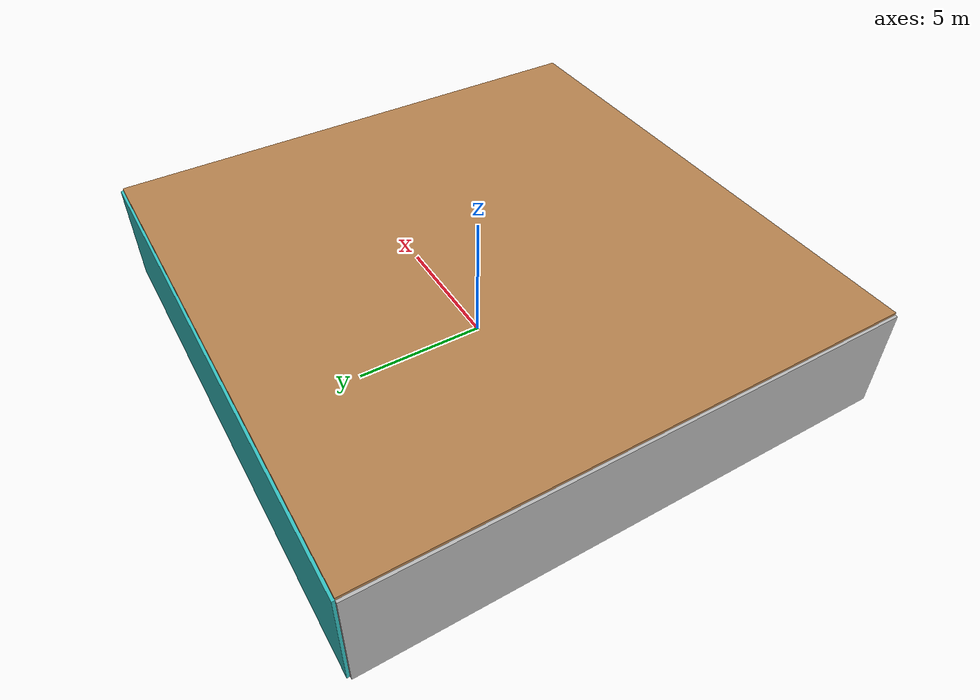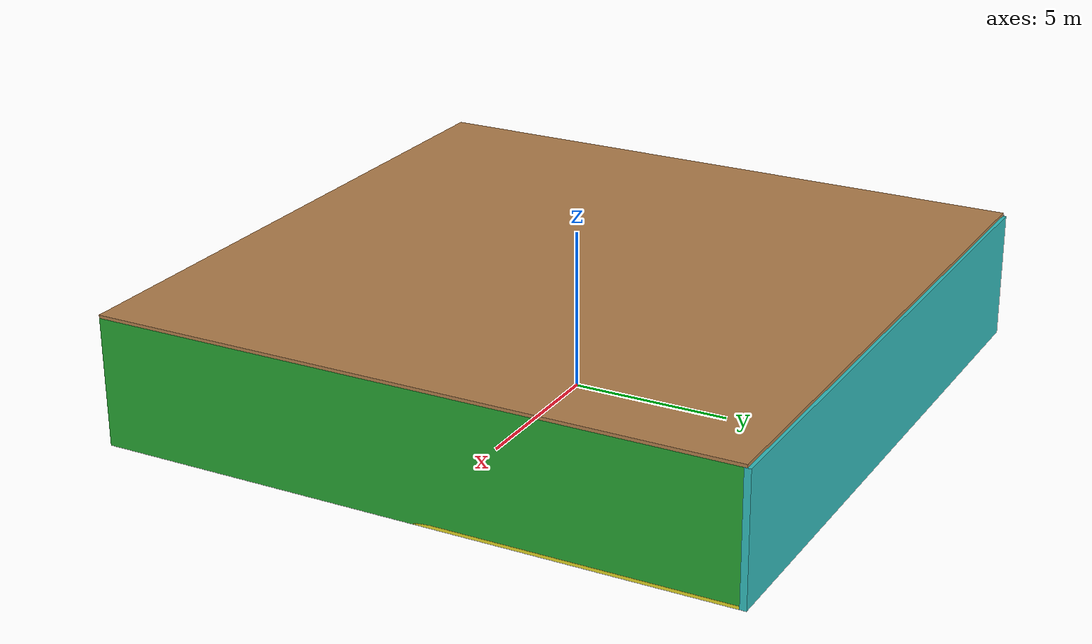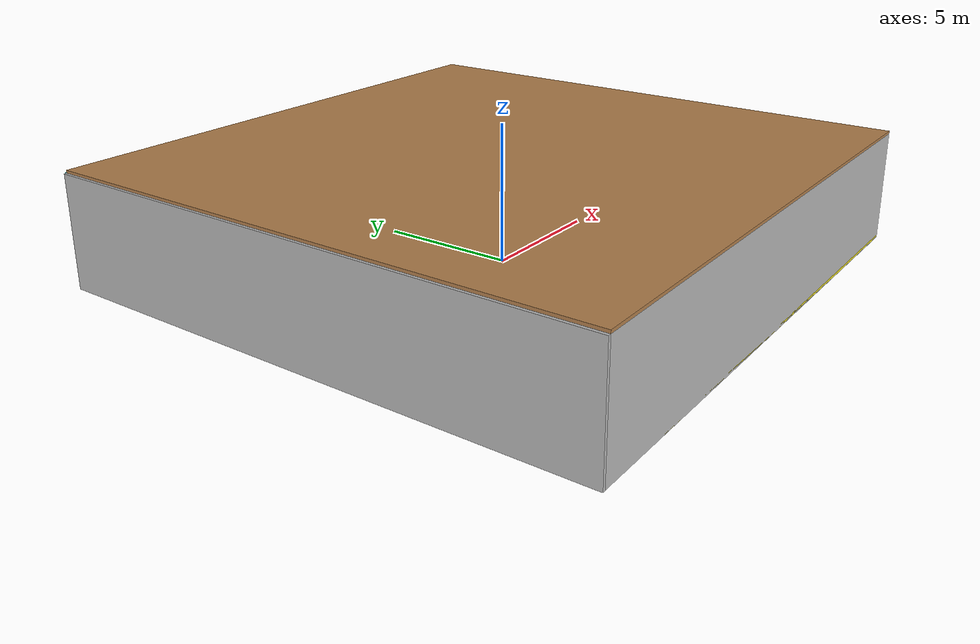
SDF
<sdf version="1.4">
 <world name="default">
  <physics type="ode">
   <max_step_size>0.001</max_step_size>
   <real_time_factor>1</real_time_factor>
   <real_time_update_rate>1000</real_time_update_rate>
   <gravity>0 0 -9.8</gravity>
  </physics>
  <scene><ambient>0.4 0.4 0.4 1</ambient><background>0.7 0.7 0.7 1</background><shadows>1</shadows></scene>
  <model name="Surrounding">
   <static>1</static>
   <link name="Ceiling">
    <collision name="Ceiling_Collision"><geometry><box><size>20 20 0.1</size></box></geometry></collision>
    <visual name="Ceiling_Visual">
     <geometry><box><size>20 20 0.1</size></box></geometry>
     <material>
      <script><uri>file://media/materials/scripts/gazebo.material</uri><name>Gazebo/WoodFloor</name></script>
     </material>
    </visual>
    <pose>0 0 4.05 0 0 0</pose>
   </link>
   <link name="Wall_South">
    <collision name="Wall_South_Collision">
     <geometry><box><size>20 0 4</size></box></geometry>
     <pose>0 0 2 0 -0 0</pose>
    </collision>
    <visual name="Wall_South_Visual">
     <pose>0 0 2 0 -0 0</pose>
     <geometry><box><size>20 0 4</size></box></geometry>
     <material>
      <script><uri>file://media/materials/scripts/gazebo.material</uri><name>Gazebo/CloudySky</name></script>
     </material>
    </visual>
    <velocity_decay><linear>0</linear><angular>0</angular></velocity_decay>
    <pose>0 -10 0 0 -0 0</pose>
   </link>
   <link name="Wall_East">
    <collision name="Wall_21_Collision">
     <geometry><box><size>20 0 4</size></box></geometry>
     <pose>0 0 2 0 -0 0</pose>
    </collision>
    <visual name="Wall_21_Visual">
     <pose>0 0 2 0 -0 0</pose>
     <geometry><box><size>20 0 4</size></box></geometry>
     <material>
      <script><uri>file://media/materials/scripts/gazebo.material</uri><name>Gazebo/GreenGlow</name></script>
     </material>
    </visual>
    <velocity_decay><linear>0</linear><angular>0</angular></velocity_decay>
    <pose>10 0 0 0 -0 1.5708</pose>
   </link>
   <link name="Wall_North">
    <collision name="Wall_22_Collision">
     <geometry><box><size>20 0.2 4</size></box></geometry>
     <pose>0 0 2 0 -0 0</pose>
    </collision>
    <visual name="Wall_22_Visual">
     <pose>0 0 2 0 -0 0</pose>
     <geometry><box><size>20 0.2 4</size></box></geometry>
     <material>
      <script><uri>file://media/materials/scripts/gazebo.material</uri><name>Gazebo/Turquoise</name></script>
     </material>
    </visual>
    <velocity_decay><linear>0</linear><angular>0</angular></velocity_decay>
    <pose>0 10 0 0 -0 0</pose>
   </link>
   <link name="Wall_West">
    <collision name="Wall_23_Collision">
     <geometry><box><size>20 0.2 4</size></box></geometry>
     <pose>0 0 2 0 -0 0</pose>
    </collision>
    <visual name="Wall_23_Visual">
     <pose>0 0 2 0 -0 0</pose>
     <geometry><box><size>20 0.2 4</size></box></geometry>
     <material>
      <script><uri>file://media/materials/scripts/gazebo.material</uri><name>Gazebo/JointAnchor</name></script>
     </material>
    </visual>
    <velocity_decay><linear>0</linear><angular>0</angular></velocity_decay>
    <pose>-10 0 0 0 0 -1.5708</pose>
   </link>
   <link name="Ground_link">
    <collision name="collision">
     <pose>0 0 .05 0 -0 0</pose>
     <geometry><box><size>20 20 0.1</size></box></geometry>
    </collision>
    <visual name="visual">
     <pose>0 0 .05 0 -0 0</pose>
     <geometry><box><size>20 20 0.1</size></box></geometry>
     <material>
      <script><uri>file://media/materials/scripts/gazebo.material</uri><name>Gazebo/YellowGlow</name></script>
     </material>
    </visual>
   </link>
   <static>1</static>
  </model>
  <spherical_coordinates>
   <surface_model>EARTH_WGS84</surface_model>
   <latitude_deg>0</latitude_deg>
   <longitude_deg>0</longitude_deg>
   <elevation>0</elevation>
   <heading_deg>0</heading_deg>
  </spherical_coordinates>
  <light name="lightball_0" type="diffuse">
   <diffuse>0.8 0.8 0.8 1</diffuse>
   <specular>0.2 0.2 0.2 1</specular>
   <attenuation>
    <range>100</range>
    <constant>0.7</constant>
    <linear>0.01</linear>
    <quadratic>0.001</quadratic>
   </attenuation>
   <direction>-0.5 0.1 -0.9</direction>
   <pose>6.36522992632 -1.72821836324 1.35835753806 0 0 0</pose>
  </light>
  <light name="lightball_1" type="diffuse">
   <diffuse>0.8 0.8 0.8 1</diffuse>
   <specular>0.2 0.2 0.2 1</specular>
   <attenuation>
    <range>100</range>
    <constant>0.7</constant>
    <linear>0.01</linear>
    <quadratic>0.001</quadratic>
   </attenuation>
   <direction>-0.5 0.1 -0.9</direction>
   <pose>2.01098516711 -0.419354828171 2.1445743028 0 0 0</pose>
  </light>
  <light name="lightball_2" type="diffuse">
   <diffuse>0.8 0.8 0.8 1</diffuse>
   <specular>0.2 0.2 0.2 1</specular>
   <attenuation>
    <range>100</range>
    <constant>0.7</constant>
    <linear>0.01</linear>
    <quadratic>0.001</quadratic>
   </attenuation>
   <direction>-0.5 0.1 -0.9</direction>
   <pose>-5.12439397085 1.15279792807 2.39120324232 0 0 0</pose>
  </light>
  <light name="lightball_3" type="diffuse">
   <diffuse>0.8 0.8 0.8 1</diffuse>
   <specular>0.2 0.2 0.2 1</specular>
   <attenuation>
    <range>100</range>
    <constant>0.7</constant>
    <linear>0.01</linear>
    <quadratic>0.001</quadratic>
   </attenuation>
   <direction>-0.5 0.1 -0.9</direction>
   <pose>7.0682836139 4.62164588082 2.06544288051 0 0 0</pose>
  </light>
  <light name="lightball_4" type="diffuse">
   <diffuse>0.8 0.8 0.8 1</diffuse>
   <specular>0.2 0.2 0.2 1</specular>
   <attenuation>
    <range>100</range>
    <constant>0.7</constant>
    <linear>0.01</linear>
    <quadratic>0.001</quadratic>
   </attenuation>
   <direction>-0.5 0.1 -0.9</direction>
   <pose>8.14849948291 -7.79565517763 2.82684341819 0 0 0</pose>
  </light>
  <include>
   <uri>model://textured_shapes</uri>
   <pose>-1.78551213875 4.64557371573 0 0 0 1.80209223772</pose>
  </include>
  <include><uri>model://cabinet</uri><pose>3.67408035786 5.32593762037 0 0 0 2.76536542844</pose></include>
 </world>
</sdf>

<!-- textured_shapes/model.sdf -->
<sdf version="1.6">
  <model name="textured_shapes">
    <pose>0 0 0.5 0 0 0</pose>
    <link name="box">
      <pose>0 -1.5 0 0 0 0</pose>
      <collision name="collision">
        <geometry>
          <box>
            <size>1 1 1</size>
          </box>
        </geometry>
      </collision>
      <visual name="visual">
        <geometry>
          <box>
            <size>1 1 1</size>
          </box>
        </geometry>
        <material>
          <script>
            <uri>model://../model_source/models/textured_shapes/materials/scripts</uri>
            <uri>model://../model_source/models/textured_shapes/materials/textures</uri>
            <name>TexturedShape/Squares</name>
          </script>
        </material>
      </visual>
    </link>
    <link name="sphere">
      <collision name="collision">
        <geometry>
          <sphere>
            <radius>0.5</radius>
          </sphere>
        </geometry>
      </collision>
      <visual name="visual">
        <geometry>
          <sphere>
            <radius>0.5</radius>
          </sphere>
        </geometry>
        <material>
          <script>
            <uri>model://../model_source/models/textured_shapes/materials/scripts</uri>
            <uri>model://../model_source/models/textured_shapes/materials/textures</uri>
            <name>TexturedShape/Squares</name>
          </script>
        </material>
      </visual>
    </link>
    <link name="cylinder">
      <pose>0 1.5 0 0 0 0</pose>
      <collision name="collision">
        <geometry>
          <cylinder>
            <radius>0.5</radius>
            <length>1</length>
          </cylinder>
        </geometry>
      </collision>
      <visual name="visual">
        <geometry>
          <cylinder>
            <radius>0.5</radius>
            <length>1</length>
          </cylinder>
        </geometry>
        <material>
          <script>
            <uri>model://../model_source/models/textured_shapes/materials/scripts</uri>
            <uri>model://../model_source/models/textured_shapes/materials/textures</uri>
            <name>TexturedShape/Squares</name>
          </script>
        </material>
      </visual>
    </link>
  </model>
</sdf>

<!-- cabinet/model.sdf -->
<sdf version="1.5">
  <model name="cabinet">
    <static>true</static>
    <link name="cabinet_bottom_plate">
      <inertial>
        <pose>0 0 -1 0 0 0</pose>
        <inertia>
          <ixx>2.050000</ixx>
          <ixy>0</ixy>
          <ixz>0</ixz>
          <iyy>2.050000</iyy>
          <iyz>0</iyz>
          <izz>2.050000</izz>
        </inertia>
        <mass>25.000000</mass>
      </inertial>
      <collision name="cabinet_bottom_plate_geom">
        <pose>0 0 0.010000 0 0 0</pose>
        <geometry>
          <box>
            <size>0.450000 0.450000 0.020000</size>
          </box>
        </geometry>
      </collision>
      <visual name="cabinet_bottom_plate_geom_visual">
        <pose>0 0 0.010000 0 0 0</pose>
        <geometry>
          <box>
            <size>0.450000 0.450000 0.020000</size>
          </box>
        </geometry>
        <material>
          <script>
            <uri>model://media/materials/scripts/gazebo.material</uri>
            <name>Gazebo/Wood</name>
          </script>
        </material>
      </visual>
      <collision name="cabinet_bottom_plate_geom_cabinet_back_plate">
        <pose>0.235000 0 0.510000 0 0 0</pose>
        <geometry>
          <box>
            <size>0.020000 0.450000 1.020000</size>
          </box>
        </geometry>
      </collision>
      <visual name="cabinet_bottom_plate_geom_cabinet_back_plate_visual">
        <pose>0.235000 0 0.510000 0 0 0</pose>
        <geometry>
          <box>
            <size>0.020000 0.450000 1.020000</size>
          </box>
        </geometry>
        <material>
          <script>
            <uri>model://media/materials/scripts/gazebo.material</uri>
            <name>Gazebo/Wood</name>
          </script>
        </material>
      </visual>
      <collision name="cabinet_bottom_plate_geom_cabinet_left_plate">
        <pose>0 0.235000 0.510000 0 0 0</pose>
        <geometry>
          <box>
            <size>0.450000 0.020000 1.020000</size>
          </box>
        </geometry>
      </collision>
      <visual name="cabinet_bottom_plate_geom_cabinet_left_plate_visual">
        <pose>0 0.235000 0.510000 0 0 0</pose>
        <geometry>
          <box>
            <size>0.450000 0.020000 1.020000</size>
          </box>
        </geometry>
        <material>
          <script>
            <uri>model://media/materials/scripts/gazebo.material</uri>
            <name>Gazebo/Wood</name>
          </script>
        </material>
      </visual>
      <collision name="cabinet_bottom_plate_geom_cabinet_middle_plate">
        <pose>0 0 0.510000 0 0 0</pose>
        <geometry>
          <box>
            <size>0.450000 0.450000 0.020000</size>
          </box>
        </geometry>
      </collision>
      <visual name="cabinet_bottom_plate_geom_cabinet_middle_plate_visual">
        <pose>0 0 0.510000 0 0 0</pose>
        <geometry>
          <box>
            <size>0.450000 0.450000 0.020000</size>
          </box>
        </geometry>
        <material>
          <script>
            <uri>model://media/materials/scripts/gazebo.material</uri>
            <name>Gazebo/Wood</name>
          </script>
        </material>
      </visual>
      <collision name="cabinet_bottom_plate_geom_cabinet_right_plate">
        <pose>0 -0.235000 0.510000 0 0 0</pose>
        <geometry>
          <box>
            <size>0.450000 0.020000 1.020000</size>
          </box>
        </geometry>
      </collision>
      <visual name="cabinet_bottom_plate_geom_cabinet_right_plate_visual">
        <pose>0 -0.235000 0.510000 0 0 0</pose>
        <geometry>
          <box>
            <size>0.450000 0.020000 1.020000</size>
          </box>
        </geometry>
        <material>
          <script>
            <uri>model://media/materials/scripts/gazebo.material</uri>
            <name>Gazebo/Wood</name>
          </script>
        </material>
      </visual>
      <collision name="cabinet_bottom_plate_geom_cabinet_top_plate">
        <pose>0 0 1.010000 0 0 0</pose>
        <geometry>
          <box>
            <size>0.450000 0.450000 0.020000</size>
          </box>
        </geometry>
      </collision>
      <visual name="cabinet_bottom_plate_geom_cabinet_top_plate_visual">
        <pose>0 0 1.010000 0 0 0</pose>
        <geometry>
          <box>
            <size>0.450000 0.450000 0.020000</size>
          </box>
        </geometry>
        <material>
          <script>
            <uri>model://media/materials/scripts/gazebo.material</uri>
            <name>Gazebo/Wood</name>
          </script>
        </material>
      </visual>
    </link>
  </model>
</sdf>
